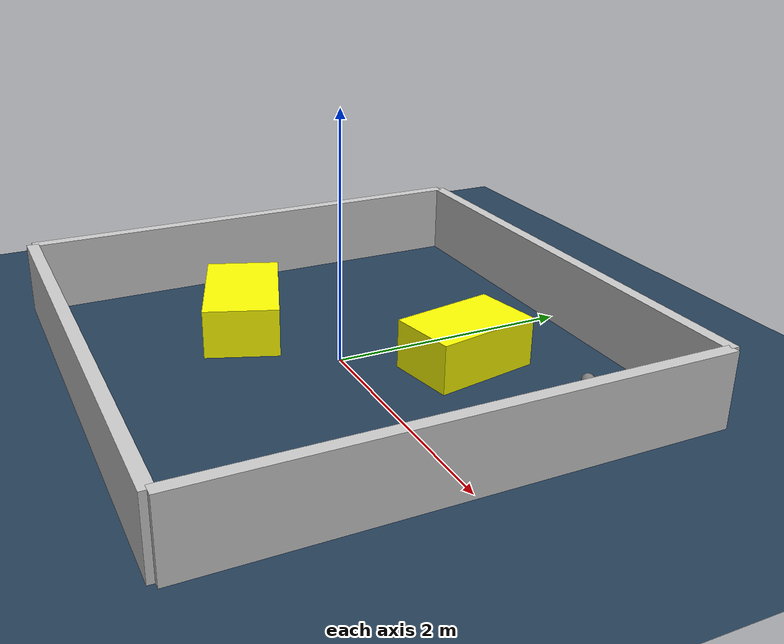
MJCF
<?xml version="1.0" ?>
<mujoco model="generated_environment">
  <option timestep="0.01" integrator="RK4" cone="elliptic"/>
  <default>
    <geom density="1"/>
  </default>
  <asset>
    <texture builtin="gradient" height="3072" rgb1="0.3 0.5 0.7" rgb2="0 0 0" type="skybox" width="512"/>
    <texture builtin="checker" height="300" mark="edge" markrgb="0.8 0.8 0.8" name="groundplane" rgb1="0.2 0.3 0.4" rgb2="0.1 0.2 0.3" type="2d" width="300"/>
    <material name="groundplane" reflectance="0.2" texrepeat="5 5" texture="groundplane" texuniform="true"/>
    <material name="robot" rgba="0.0 1.0 0.0 1"/>
  </asset>
  <worldbody>
    <light dir="0 0 -1" directional="true" pos="0 0 1.5"/>
    <geom condim="4" friction="1.0 0.005 0.001" material="groundplane" name="floor" size="0 0 0.05" type="plane"/>
    <body name="walls">
      <geom name="wall_1" condim="4" pos="-2.0 0.0 0.3" rgba="0.800000011920929 0.800000011920929 0.800000011920929 1.0" size="0.05 2.0 0.3" type="box"/>
      <geom name="wall_2" condim="4" pos="2.0 0.0 0.3" rgba="0.800000011920929 0.800000011920929 0.800000011920929 1.0" size="0.05 2.0 0.3" type="box"/>
      <geom name="wall_3" condim="4" pos="0.0 -2.0 0.3" rgba="0.800000011920929 0.800000011920929 0.800000011920929 1.0" size="2.0 0.05 0.3" type="box"/>
      <geom name="wall_4" condim="4" pos="0.0 2.0 0.3" rgba="0.800000011920929 0.800000011920929 0.800000011920929 1.0" size="2.0 0.05 0.3" type="box"/>
    </body>
    <body name="robot">
      <joint name="joint_x" type="slide" pos="0 0 0" axis="1 0 0"/>
      <joint name="joint_y" type="slide" pos="0 0 0" axis="0 1 0"/>
      <geom name="robot" type="sphere" pos="1.3718409793979403 1.325060825948154 0.2" size="0.05" mass="5." friction="1.0 0.005 0.0001" condim="4"/>
      <site name="sensor_ball"/>
    </body>
    <body name="obstacle_1_movable">
      <geom name="obstacle_1_movable" condim="4" pos="-0.8494685200192473 -0.5092040187136093 0.2" euler="0 0 339.9288080199415" friction="1.0 0.005 0.001" rgba="1 1 0 1" size="0.5143964948228196 0.3025298565542526 0.2" type="box" mass="0.1"/>
      <joint type="free"/>
    </body>
    <body name="obstacle_2_movable">
      <geom name="obstacle_2_movable" condim="4" pos="0.47943301102607183 0.8402263333248368 0.2" euler="0 0 10.362629947577119" friction="1.0 0.005 0.001" rgba="1 1 0 1" size="0.27983398004058435 0.43994695042805726 0.2" type="box" mass="0.1"/>
      <joint type="free"/>
    </body>
  </worldbody>
  <actuator>
    <motor name="actuator_x" joint="joint_x" gear="1" ctrlrange="-1 1"/>
    <motor name="actuator_y" joint="joint_y" gear="1" ctrlrange="-1 1"/>
  </actuator>
</mujoco>
